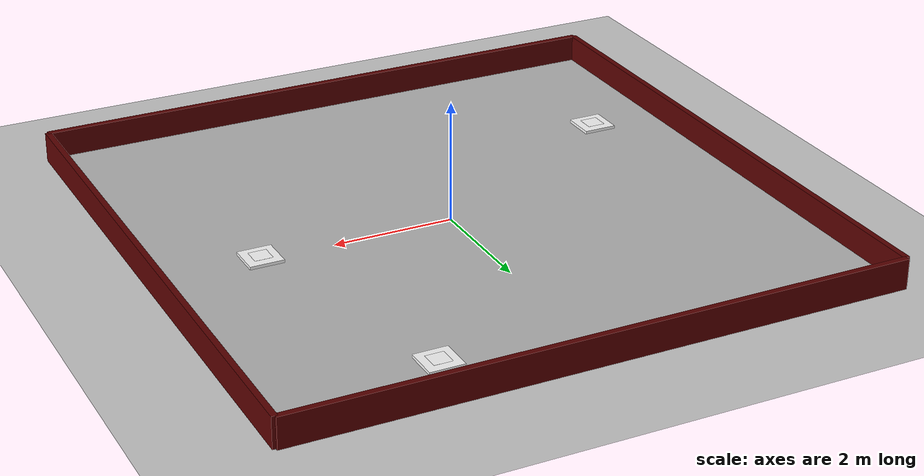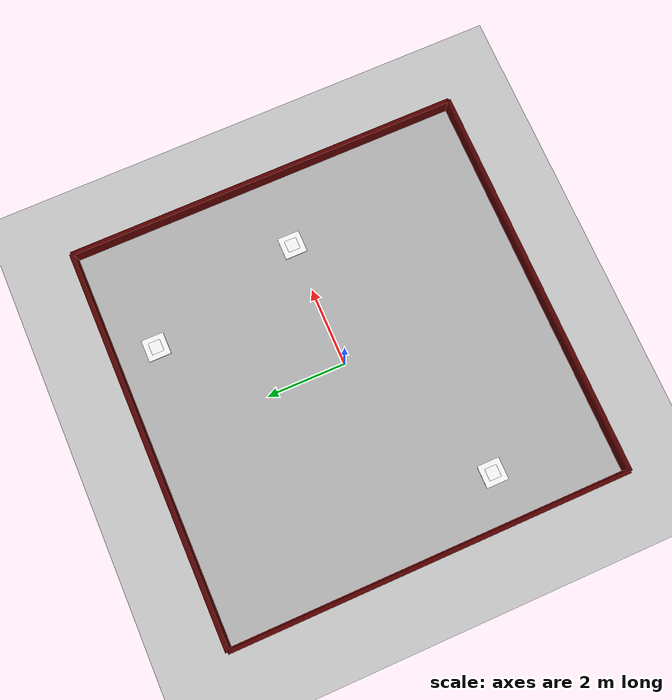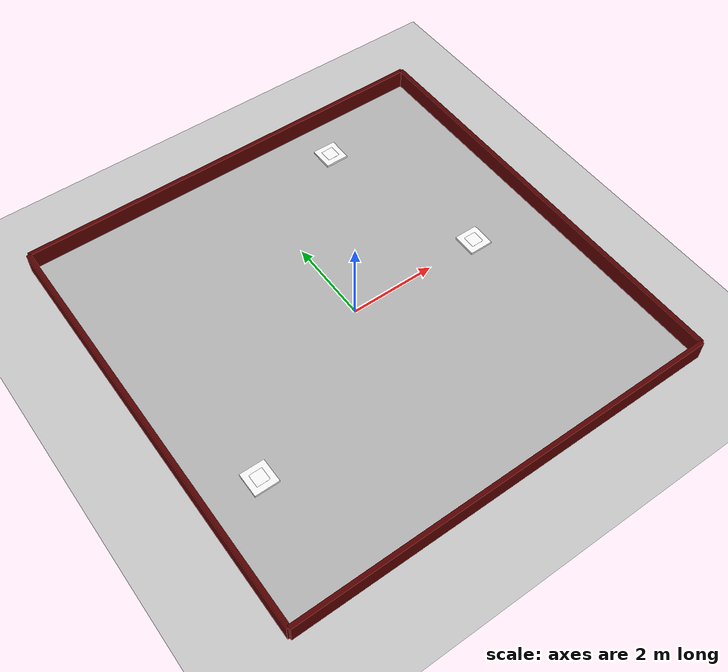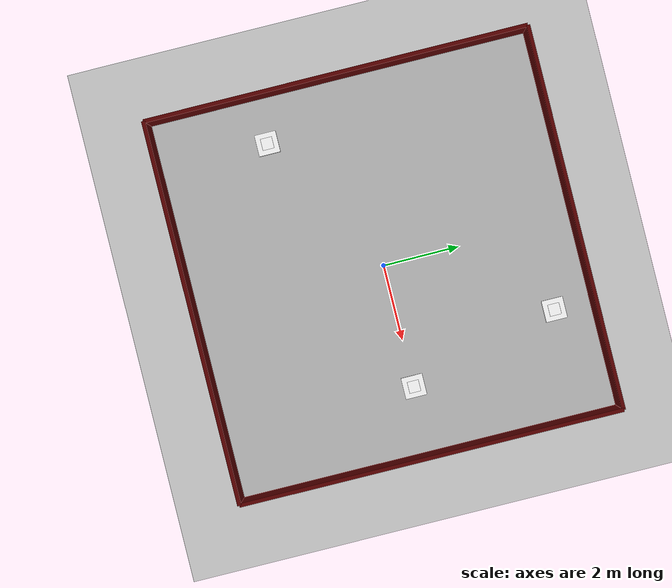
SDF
<?xml version="1.0" ?>

<sdf version="1.8">
  <world name="default">

    <model name="track">
        <static>true</static>

        <link name="black_track">
            <pose>0 0 0 0 0 0</pose>
            <collision name="collision">
            <geometry><box><size>10 10 0.1</size></box></geometry>
            </collision>
            <visual name="visual">
            <geometry><box><size>10 10 0.1</size></box></geometry>
            </visual>
        </link>
    </model>

    <!-- ================= OUTER FENCES (LONGER & WIDER, VALID SDF) ================= -->
    <model name="fences_outer">
        <static>true</static>

        <!-- SEGMENT 1 -->
        <link name="outer_s1">
            <pose>0 -5 0.25 0 0 0</pose>
            <collision name="collision">
            <geometry><box><size>10 0.1 0.5</size></box></geometry>
            </collision>
            <visual name="visual">
            <geometry><box><size>10 0.1 0.5</size></box></geometry>
            <material>
                <ambient>0.25 0 0 1</ambient>
                <diffuse>0.35 0 0 1</diffuse>
                <specular>0.05 0.05 0.05 1</specular>
            </material>
            </visual>
        </link>

        <!-- SEGMENT 2 -->
        <link name="outer_s2">
            <pose>5 0 0.25 0 0 1.57</pose>
            <collision name="collision">
            <geometry><box><size>10 0.1 0.5</size></box></geometry>
            </collision>
            <visual name="visual">
            <geometry><box><size>10 0.1 0.5</size></box></geometry>
            <material>
                <ambient>0.25 0 0 1</ambient>
                <diffuse>0.35 0 0 1</diffuse>
                <specular>0.05 0.05 0.05 1</specular>
            </material>
            </visual>
        </link>

        <!-- SEGMENT 3 -->
        <link name="outer_s3">
            <pose>0 5 0.25 0 0 3.14</pose>
            <collision name="collision">
            <geometry><box><size>10 0.1 0.5</size></box></geometry>
            </collision>
            <visual name="visual">
            <geometry><box><size>10 0.1 0.5</size></box></geometry>
            <material>
                <ambient>0.25 0 0 1</ambient>
                <diffuse>0.35 0 0 1</diffuse>
                <specular>0.05 0.05 0.05 1</specular>
            </material>
            </visual>
        </link>

        <!-- SEGMENT 4 -->
        <link name="outer_s4">
            <pose>-5 0 0.25 0 0 -1.57</pose>
            <collision name="collision">
            <geometry><box><size>10 0.1 0.5</size></box></geometry>
            </collision>
            <visual name="visual">
            <geometry><box><size>10 0.1 0.5</size></box></geometry>
            <material>
                <ambient>0.25 0 0 1</ambient>
                <diffuse>0.35 0 0 1</diffuse>
                <specular>0.05 0.05 0.05 1</specular>
            </material>
            </visual>
        </link>

    </model>

    <plugin
    filename="gz-sim-physics-system"
    name="gz::sim::systems::Physics">
    </plugin>

    <plugin
    filename="gz-sim-scene-broadcaster-system"
    name="gz::sim::systems::SceneBroadcaster">
    </plugin>

    <plugin
    filename="gz-sim-user-commands-system"
    name="gz::sim::systems::UserCommands">
    </plugin>

    <plugin
    filename="gz-sim-sensors-system"
    name="gz::sim::systems::Sensors">
    <render_engine>ogre2</render_engine>
    </plugin>

    <light name="sun" type="directional">
    <cast_shadows>true</cast_shadows>
    <pose>0 0 10 0 0 0</pose>
    <diffuse>0.8 0.8 0.8 1</diffuse>
    <specular>0.2 0.2 0.2 1</specular>
    <attenuation>
        <range>1000</range>
        <constant>0.9</constant>
        <linear>0.01</linear>
        <quadratic>0.001</quadratic>
    </attenuation>
    <direction>-0.5 0.1 -0.9</direction>
    </light>

    <model name="ground_plane">
    <static>true</static>
    <link name="link">
        <collision name="collision">
        <geometry>
            <plane>
            <normal>0 0 1</normal>
            <size>100 100</size>
            </plane>
        </geometry>
        </collision>
        <visual name="visual">
        <geometry>
            <plane>
            <normal>0 0 1</normal>
            <size>100 100</size>
            </plane>
        </geometry>
        <material>
            <ambient>0.8 0.8 0.8 1</ambient>
            <diffuse>0.8 0.8 0.8 1</diffuse>
            <specular>0.8 0.8 0.8 1</specular>
        </material>
        </visual>
    </link>
    </model>

    <include>
    <uri>model://aruco_1</uri>
    <pose>3.5 0.0 0.05 0 -1.57 0</pose>
    </include>

    <include>
    <uri>model://aruco_2</uri>
    <pose>2.45 4.0 0.05 0 -1.57 0</pose>
    </include>

    <include>
    <uri>model://aruco_3</uri>
    <pose>-3.5 -2.15 0.05 0 -1.57 0</pose>
    </include>

  </world>
</sdf>

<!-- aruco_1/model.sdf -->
<sdf version="1.8">
  <model name="aruco_1">
    <static>true</static>
    <link name="link">
      <visual name="board_visual">
        <pose>0.0 0 0.28 0 0 0</pose>
        <geometry>
          <box>
            <size>0.1 0.56 0.56</size>
          </box>
        </geometry>
        <material>
          <ambient>1 1 1 1</ambient>
          <diffuse>1 1 1 1</diffuse>
        </material>
      </visual>
      <collision name="board_collision">
        <pose>0.0 0 0.28 0 0 0</pose>
        <geometry>
          <box>
            <size>0.1 0.56 0.56</size>
          </box>
        </geometry>
      </collision>

      <visual name="marker_visual">
        <pose>0.06 0 0.28 0 0 0</pose>
        <geometry>
          <box>
            <size>0.001 0.3 0.3</size>
          </box>
        </geometry>
        <material>
          <diffuse>1 1 1 1</diffuse>
          <pbr>
            <metal>
              <albedo_map>textures/marker_3.png</albedo_map>
            </metal>
          </pbr>
        </material>
      </visual>

    </link>
  </model>
</sdf>

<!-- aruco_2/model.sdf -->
<sdf version="1.8">
  <model name="aruco_2">
    <static>true</static>
    <link name="link">
      <visual name="board_visual">
        <pose>0.0 0 0.28 0 0 0</pose>
        <geometry>
          <box>
            <size>0.1 0.56 0.56</size>
          </box>
        </geometry>
        <material>
          <ambient>1 1 1 1</ambient>
          <diffuse>1 1 1 1</diffuse>
        </material>
      </visual>
      <collision name="board_collision">
        <pose>0.0 0 0.28 0 0 0</pose>
        <geometry>
          <box>
            <size>0.2 0.56 0.56</size>
          </box>
        </geometry>
      </collision>

      <visual name="marker_visual">
        <pose>0.06 0 0.28 0 0 0</pose>
        <geometry>
          <box>
            <size>0.001 0.3 0.3</size>
          </box>
        </geometry>
        <material>
          <diffuse>1 1 1 1</diffuse>
          <pbr>
            <metal>
              <albedo_map>textures/marker_23.png</albedo_map>
            </metal>
          </pbr>
        </material>
      </visual>
    </link>
  </model>
</sdf>

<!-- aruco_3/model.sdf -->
<sdf version="1.8">
  <model name="aruco_3">
    <static>true</static>
    <link name="link">
      <visual name="board_visual">
        <pose>0.0 0 0.28 0 0 0</pose>
        <geometry>
          <box>
            <size>0.1 0.56 0.56</size>
          </box>
        </geometry>
        <material>
          <ambient>1 1 1 1</ambient>
          <diffuse>1 1 1 1</diffuse>
        </material>
      </visual>
      <collision name="board_collision">
        <pose>0.0 0.0 0.28 0 0 0</pose>
        <geometry>
          <box>
            <size>0.1 0.56 0.56</size>
          </box>
        </geometry>
      </collision>

      <visual name="marker_visual">
        <pose>0.06 0 0.28 0 0 0</pose>
        <geometry>
          <box>
            <size>0.001 0.3 0.3</size>
          </box>
        </geometry>
        <material>
          <diffuse>1 1 1 1</diffuse>
          <pbr>
            <metal>
              <albedo_map>textures/marker_42.png</albedo_map>
            </metal>
          </pbr>
        </material>
      </visual>
    </link>
  </model>
</sdf>
